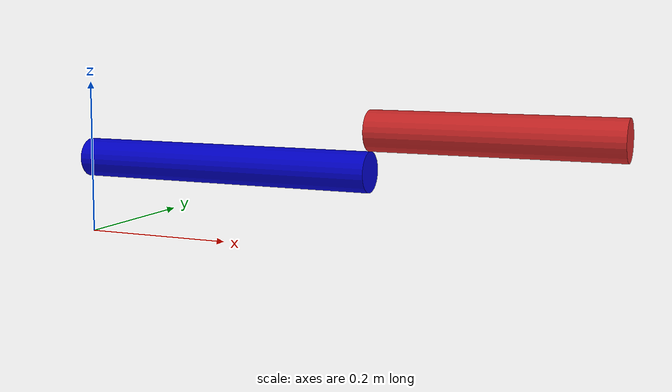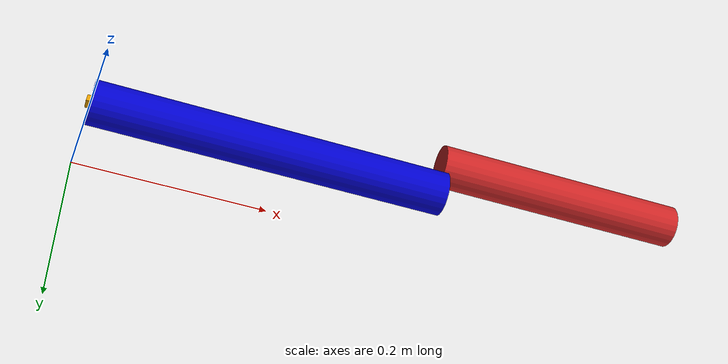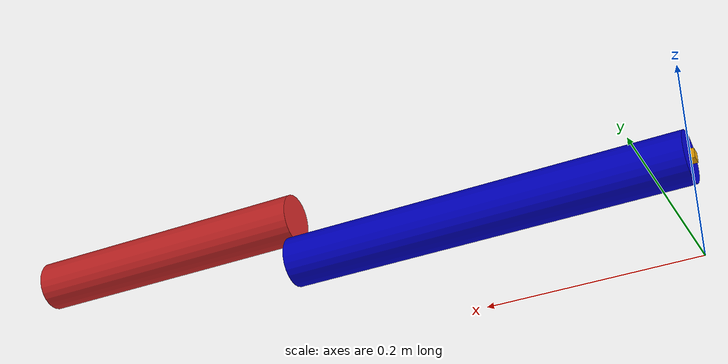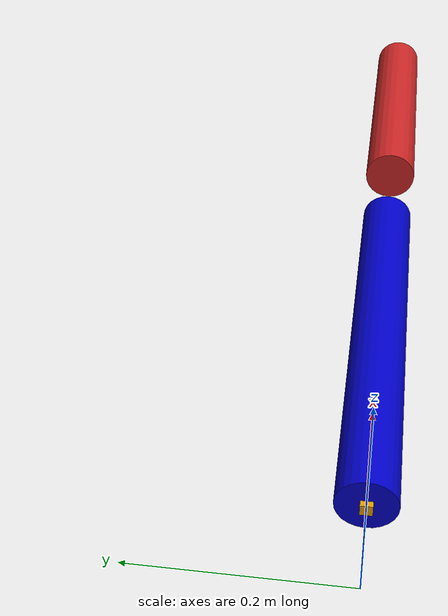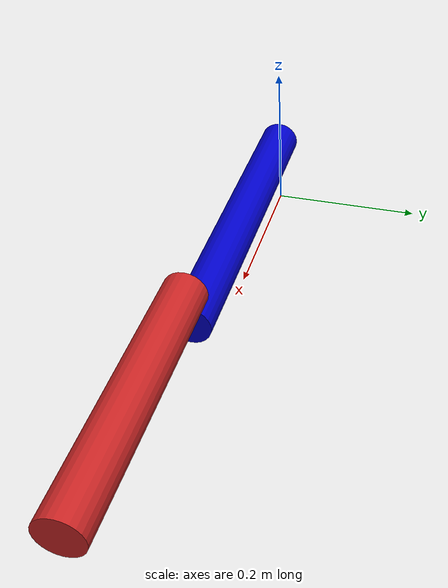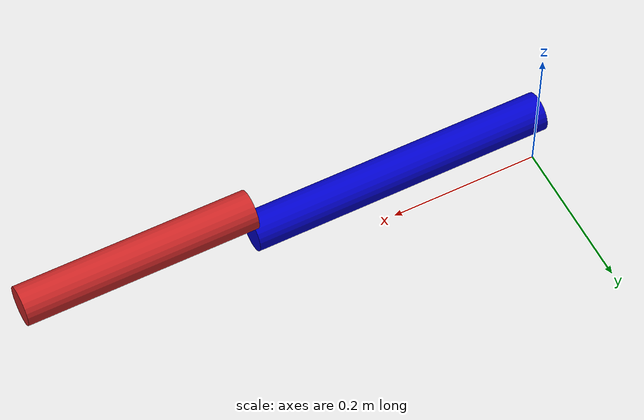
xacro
<?xml version="1.0"?>

<robot name="scara" xmlns:xacro="http://www.ros.org/wiki/xacro">

  <!-- =========================================================
       ПАРАМЕТРЫ SCARA
       ========================================================= -->

  <!-- Длины звеньев -->
  <!--
       Было:
           L1 = 0.35 м
           L2 = 0.25 м

       Теперь:
           L1 = 0.40 м
           L2 = 0.30 м
  -->
  <xacro:property name="L1" value="0.40"/>
  <xacro:property name="L2" value="0.30"/>

  <!-- Радиус цилиндрических звеньев -->
  <xacro:property name="radius" value="0.025"/>

  <!-- =========================================================
       МАССЫ ЗВЕНЬЕВ
       ========================================================= -->

  <xacro:property name="M1" value="3.54"/>
  <xacro:property name="M2" value="2.66"/>

  <!-- Первое звено:
       m1 = 2.0 кг
       L1 = 0.40 м
       r  = 0.025 м
  -->

  <xacro:property name="Ixx1" value="0.0011064"/>
  <xacro:property name="Iyy1" value="0.0477579"/>
  <xacro:property name="Izz1" value="0.0477579"/>

  <!-- Второе звено:
       m2 = 1.5 кг
       L2 = 0.30 м
       r  = 0.025 м
  -->

  <xacro:property name="Ixx2" value="0.00082977"/>
  <xacro:property name="Iyy2" value="0.02032935"/>
  <xacro:property name="Izz2" value="0.02032935"/>

  <!-- =========================================================
       МАТЕРИАЛЫ
       ========================================================= -->

  <xacro:include filename="$(find scara_sim)/description/materials.xacro"/>

  <!-- =========================================================
       BASE LINK
       ========================================================= -->

  <link name="base_link">

    <inertial>
      <mass value="0.001"/>

      <inertia
        ixx="0.000001"
        ixy="0"
        ixz="0"
        iyy="0.000001"
        iyz="0"
        izz="0.000001"/>
    </inertial>

    <visual>
      <geometry>
        <box size="0.01 0.01 0.01"/>
      </geometry>
    </visual>

  </link>

  <joint name="joint1" type="continuous">

    <parent link="base_link"/>
    <child link="link1"/>

    <!-- Первое звено начинается в начале координат -->
    <origin
      xyz="0 0 0"
      rpy="0 0 0"/>

    <!-- Вращение вокруг вертикальной оси Z -->
    <axis xyz="0 0 1"/>

    <limit
      effort="1000000"
      velocity="100"
      lower="-3.14159"
      upper="3.14159"/>

    <dynamics
      damping="0.1"
      friction="0.0"/>

  </joint>

  <link name="link1">

    <!-- ========================
         Инерциальные параметры
         ======================== -->

    <inertial>

      <!-- Центр масс первого звена -->
      <origin
        xyz="${L1/2} 0 0"
        rpy="0 1.5708 0"/>

      <mass value="${M1}"/>

      <inertia
        ixx="${Ixx1}"
        ixy="0"
        ixz="0"
        iyy="${Iyy1}"
        iyz="0"
        izz="${Izz1}"/>

    </inertial>

    <!-- ========================
         Визуальная модель
         ======================== -->

    <visual>

      <!-- Центр цилиндра находится в середине звена -->
      <origin
        xyz="${L1/2} 0 0"
        rpy="0 1.5708 0"/>

      <geometry>
        <cylinder
          radius="${radius}"
          length="${L1}"/>
      </geometry>

      <material name="blue"/>

    </visual>

    <!-- ========================
         Collision-модель
         ======================== -->

    <collision>

      <origin
        xyz="${L1/2} 0 0"
        rpy="0 1.5708 0"/>

      <geometry>
        <cylinder
          radius="${radius}"
          length="${L1}"/>
      </geometry>

    </collision>

  </link>

  <joint name="joint2" type="continuous">

    <parent link="link1"/>
    <child link="link2"/>

    <origin
      xyz="${L1} 0 ${radius*2}"
      rpy="0 0 0"/>

    <!-- Ось вращения второго шарнира -->
    <axis xyz="0 0 1"/>

    <limit
      effort="1000000"
      velocity="100"
      lower="-3.14159"
      upper="3.14159"/>

    <dynamics
      damping="0.1"
      friction="0.0"/>

  </joint>

  <link name="link2">

    <!-- ========================
         Инерциальные параметры
         ======================== -->

    <inertial>

      <!-- Центр масс второго звена -->
      <origin
        xyz="${L2/2} 0 0"
        rpy="0 1.5708 0"/>

      <mass value="${M2}"/>

      <inertia
        ixx="${Ixx2}"
        ixy="0"
        ixz="0"
        iyy="${Iyy2}"
        iyz="0"
        izz="${Izz2}"/>

    </inertial>

    <!-- ========================
         Визуальная модель
         ======================== -->

    <visual>

      <origin
        xyz="${L2/2} 0 0"
        rpy="0 1.5708 0"/>

      <geometry>
        <cylinder
          radius="${radius}"
          length="${L2}"/>
      </geometry>

      <material name="red"/>

    </visual>

    <!-- ========================
         Collision-модель
         ======================== -->

    <collision>

      <origin
        xyz="${L2/2} 0 0"
        rpy="0 1.5708 0"/>

      <geometry>
        <cylinder
          radius="${radius}"
          length="${L2}"/>
      </geometry>

    </collision>

  </link>

  <link name="tool0"/>

  <joint name="tool_joint" type="fixed">

    <parent link="link2"/>
    <child link="tool0"/>

    <!-- Конец второго звена -->
    <origin
      xyz="${L2} 0 0"
      rpy="0 0 0"/>

  </joint>

  <!-- =========================================================
       WORLD

       Фиксированная мировая система координат.
       ========================================================= -->

  <link name="world"/>

  <joint name="world_to_base" type="fixed">

    <parent link="world"/>
    <child link="base_link"/>

    <!-- Высота основания над землёй -->
    <origin
      xyz="0 0 0.1"
      rpy="0 0 0"/>

  </joint>

  <!-- =========================================================
       GAZEBO / ROS 2 CONTROL
       ========================================================= -->

  <gazebo>

    <plugin
      filename="gz_ros2_control-system"
      name="gz_ros2_control::GazeboSimROS2ControlPlugin">

      <parameters>
        $(find scara_sim)/config/scara_controllers.yaml
      </parameters>

    </plugin>

  </gazebo>

<ros2_control name="GazeboSimSystem" type="system">

  <hardware>
    <plugin>gz_ros2_control/GazeboSimSystem</plugin>
  </hardware>

  <joint name="joint1">
    <command_interface name="effort">
      <param name="min">-1000</param>
      <param name="max">1000</param>
    </command_interface>

    <state_interface name="position">
      <param name="initial_value">3.11689511</param>
    </state_interface>

    <state_interface name="velocity"/>
    <state_interface name="effort"/>
  </joint>

  <joint name="joint2">
    <command_interface name="effort">
      <param name="min">-1000</param>
      <param name="max">1000</param>
    </command_interface>

    <state_interface name="position">
      <param name="initial_value">2.11862318</param>
    </state_interface>

    <state_interface name="velocity"/>
    <state_interface name="effort"/>
  </joint>

</ros2_control>

</robot>

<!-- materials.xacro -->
<robot xmlns:xacro="http://www.ros.org/wiki/xacro">
  <!-- Серый для первого звена -->
  <material name="grey">
    <color rgba="0.7 0.7 0.7 1.0"/>
  </material>

  <!-- Синий для второго звена -->
  <material name="blue">
    <color rgba="0.0 0.0 0.8 1.0"/>
  </material>

  <!-- Можно добавить другие материалы, например, для основания -->
  <material name="black">
    <color rgba="0.1 0.1 0.1 1.0"/>
  </material>
</robot>
